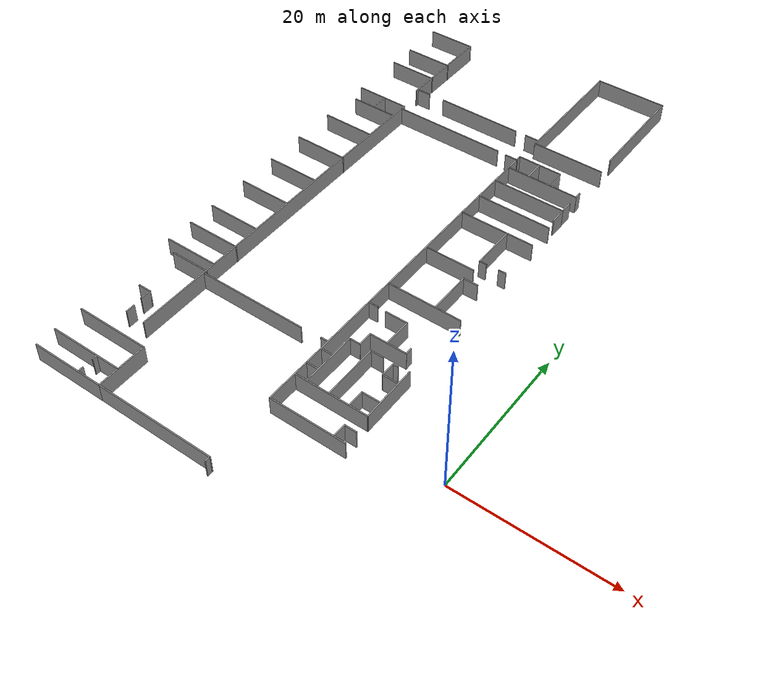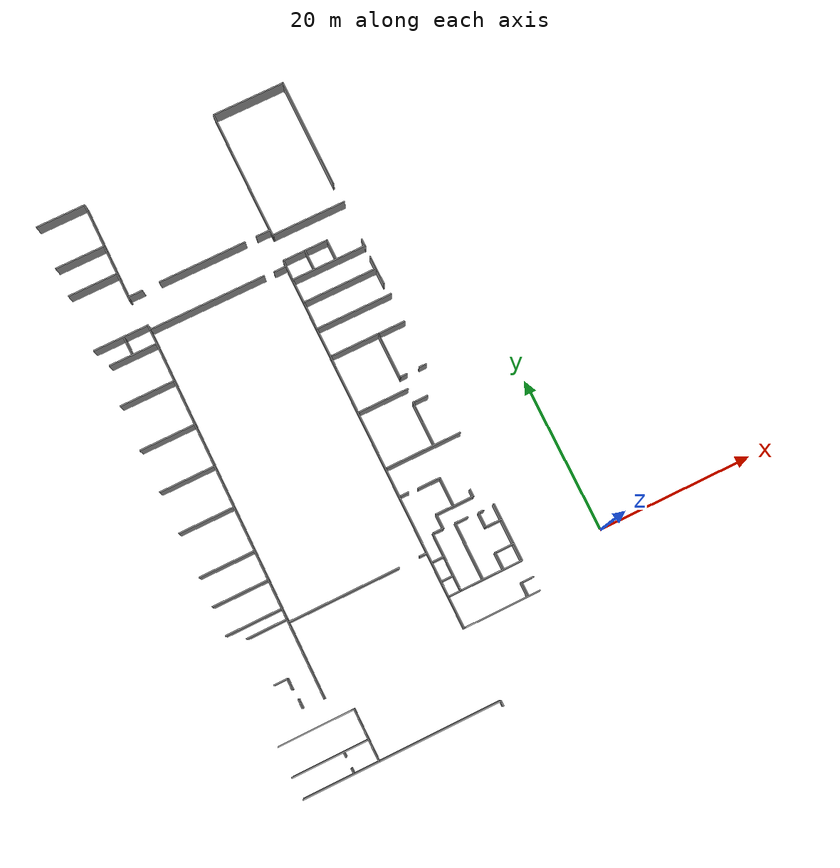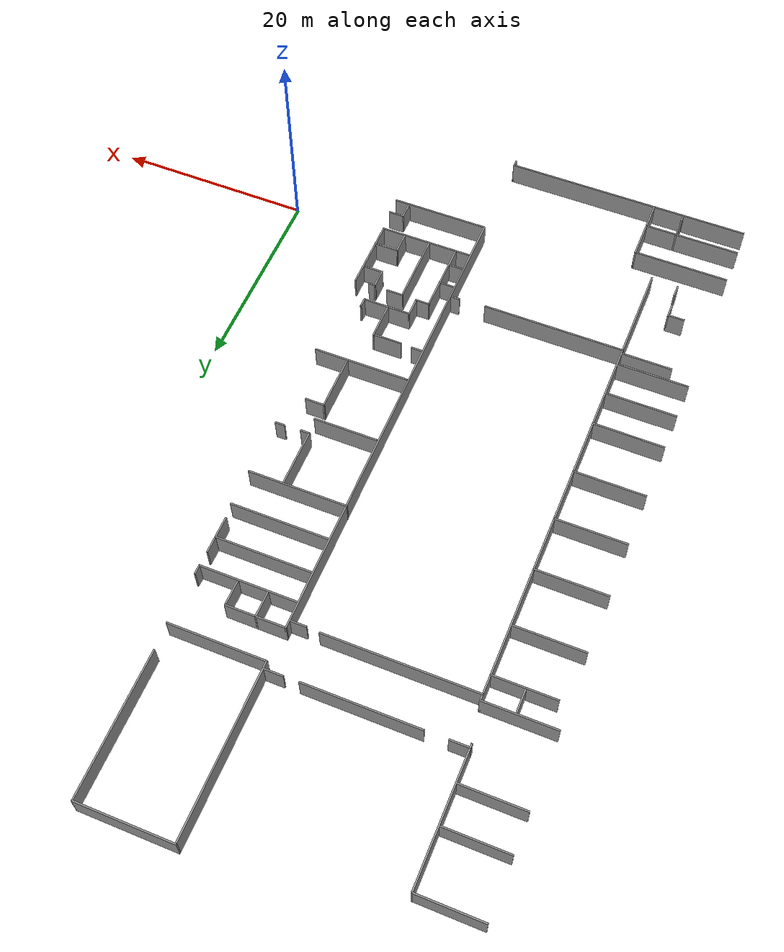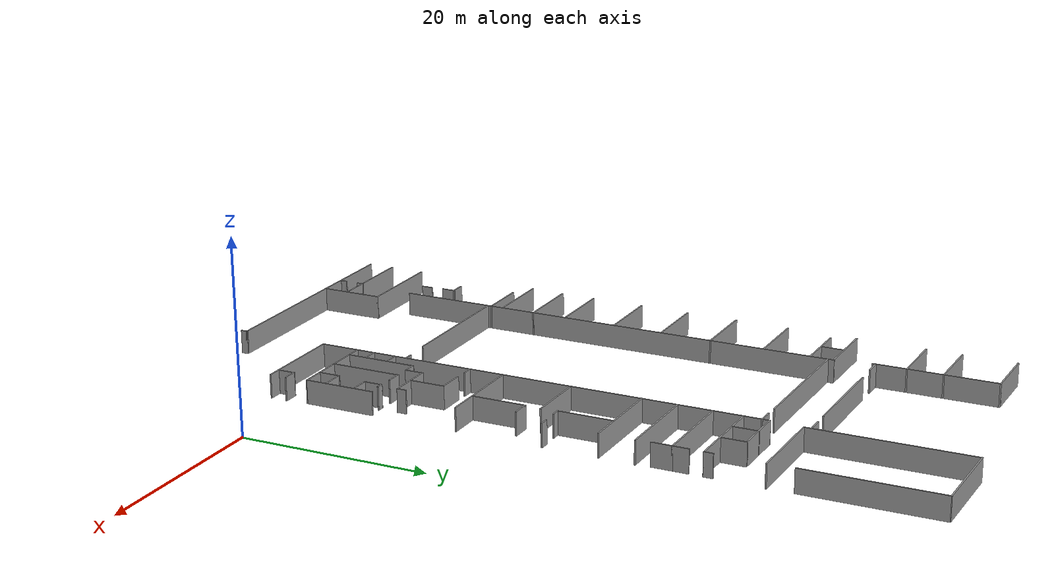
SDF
<sdf version="1.6">
 <model name="ensta_portes">
  <pose>1.28297 8.11006 0 0 -0 0</pose>
  <link name="Wall_340">
   <collision name="Wall_340_Collision">
    <geometry><box><size>9.59247 0.15 2.5</size></box></geometry>
    <pose>0 0 1.25 0 -0 0</pose>
   </collision>
   <visual name="Wall_340_Visual">
    <pose>0 0 1.25 0 -0 0</pose>
    <geometry><box><size>9.59247 0.15 2.5</size></box></geometry>
    <material>
     <script><uri>file://media/materials/scripts/gazebo.material</uri><name>Gazebo/Grey</name></script>
     <ambient>1 1 1 1</ambient>
    </material>
    <meta><layer>0</layer></meta>
   </visual>
   <pose>-16.2627 58.2864 0 0 -0 -0.000691</pose>
  </link>
  <link name="Wall_343">
   <collision name="Wall_343_Collision">
    <geometry><box><size>14.5 0.15 2.5</size></box></geometry>
    <pose>0 0 1.25 0 -0 0</pose>
   </collision>
   <visual name="Wall_343_Visual">
    <pose>0 0 1.25 0 -0 0</pose>
    <geometry><box><size>14.5 0.15 2.5</size></box></geometry>
    <material>
     <script><uri>file://media/materials/scripts/gazebo.material</uri><name>Gazebo/Grey</name></script>
     <ambient>1 1 1 1</ambient>
    </material>
    <meta><layer>0</layer></meta>
   </visual>
   <pose>-11.5415 51.1081 0 0 -0 -1.5708</pose>
  </link>
  <link name="Wall_345">
   <collision name="Wall_345_Collision">
    <geometry><box><size>17.25 0.15 2.5</size></box></geometry>
    <pose>0 0 1.25 0 -0 0</pose>
   </collision>
   <visual name="Wall_345_Visual">
    <pose>0 0 1.25 0 -0 0</pose>
    <geometry><box><size>17.25 0.15 2.5</size></box></geometry>
    <material>
     <script><uri>file://media/materials/scripts/gazebo.material</uri><name>Gazebo/Grey</name></script>
     <ambient>1 1 1 1</ambient>
    </material>
    <meta><layer>0</layer></meta>
   </visual>
   <pose>-20.9839 49.7396 0 0 -0 -1.5708</pose>
  </link>
  <link name="Wall_347">
   <collision name="Wall_347_Collision">
    <geometry><box><size>9.75 0.15 2.5</size></box></geometry>
    <pose>0 0 1.25 0 -0 0</pose>
   </collision>
   <visual name="Wall_347_Visual">
    <pose>0 0 1.25 0 -0 0</pose>
    <geometry><box><size>9.75 0.15 2.5</size></box></geometry>
    <material>
     <script><uri>file://media/materials/scripts/gazebo.material</uri><name>Gazebo/Grey</name></script>
     <ambient>1 1 1 1</ambient>
    </material>
    <meta><layer>0</layer></meta>
   </visual>
   <pose>-16.1839 41.1896 0 0 -0 0</pose>
  </link>
  <link name="Wall_380">
   <collision name="Wall_380_Collision">
    <geometry><box><size>49.25 0.15 2.5</size></box></geometry>
    <pose>0 0 1.25 0 -0 0</pose>
   </collision>
   <visual name="Wall_380_Visual">
    <pose>0 0 1.25 0 -0 0</pose>
    <geometry><box><size>49.25 0.15 2.5</size></box></geometry>
    <material>
     <script><uri>file://media/materials/scripts/gazebo.material</uri><name>Gazebo/Grey</name></script>
     <ambient>1 1 1 1</ambient>
    </material>
    <meta><layer>0</layer></meta>
   </visual>
   <pose>-21.1812 13.1709 0 0 -0 -1.5708</pose>
  </link>
  <link name="Wall_382">
   <collision name="Wall_382_Collision">
    <geometry><box><size>10 0.15 2.5</size></box></geometry>
    <pose>0 0 1.25 0 -0 0</pose>
   </collision>
   <visual name="Wall_382_Visual">
    <pose>0 0 1.25 0 -0 0</pose>
    <geometry><box><size>10 0.15 2.5</size></box></geometry>
    <material>
     <script><uri>file://media/materials/scripts/gazebo.material</uri><name>Gazebo/Grey</name></script>
     <ambient>1 1 1 1</ambient>
    </material>
    <meta><layer>0</layer></meta>
   </visual>
   <pose>-16.2562 -11.3791 0 0 -0 0</pose>
  </link>
  <link name="Wall_385">
   <collision name="Wall_385_Collision">
    <geometry><box><size>1.776 0.15 2.5</size></box></geometry>
    <pose>0 0 1.25 0 -0 0</pose>
   </collision>
   <visual name="Wall_385_Visual">
    <pose>0 0 1.25 0 -0 0</pose>
    <geometry><box><size>1.776 0.15 2.5</size></box></geometry>
    <material>
     <script><uri>file://media/materials/scripts/gazebo.material</uri><name>Gazebo/Grey</name></script>
     <ambient>1 1 1 1</ambient>
    </material>
    <meta><layer>0</layer></meta>
   </visual>
   <pose>-12.7716 -10.4273 0 0 -0 1.56551</pose>
  </link>
  <link name="Wall_386">
   <collision name="Wall_386_Collision">
    <geometry><box><size>1.60854 0.15 2.5</size></box></geometry>
    <pose>0 0 1.25 0 -0 0</pose>
   </collision>
   <visual name="Wall_386_Visual">
    <pose>0 0 1.25 0 -0 0</pose>
    <geometry><box><size>1.60854 0.15 2.5</size></box></geometry>
    <material>
     <script><uri>file://media/materials/scripts/gazebo.material</uri><name>Gazebo/Grey</name></script>
     <ambient>1 1 1 1</ambient>
    </material>
    <meta><layer>0</layer></meta>
   </visual>
   <pose>-12.0294 -9.61226 0 0 -0 0.002908</pose>
  </link>
  <link name="Wall_392">
   <collision name="Wall_392_Collision">
    <geometry><box><size>9.76266 0.15 2.5</size></box></geometry>
    <pose>0 0 1.25 0 -0 0</pose>
   </collision>
   <visual name="Wall_392_Visual">
    <pose>0 0 1.25 0 -0 0</pose>
    <geometry><box><size>9.76266 0.15 2.5</size></box></geometry>
    <material>
     <script><uri>file://media/materials/scripts/gazebo.material</uri><name>Gazebo/Grey</name></script>
     <ambient>1 1 1 1</ambient>
    </material>
    <meta><layer>0</layer></meta>
   </visual>
   <pose>-16.3654 -7.30687 0 0 -0 0.000567</pose>
  </link>
  <link name="Wall_393">
   <collision name="Wall_393_Collision">
    <geometry><box><size>7.5 0.15 2.5</size></box></geometry>
    <pose>0 0 1.25 0 -0 0</pose>
   </collision>
   <visual name="Wall_393_Visual">
    <pose>0 0 1.25 0 -0 0</pose>
    <geometry><box><size>7.5 0.15 2.5</size></box></geometry>
    <material>
     <script><uri>file://media/materials/scripts/gazebo.material</uri><name>Gazebo/Grey</name></script>
     <ambient>1 1 1 1</ambient>
    </material>
    <meta><layer>0</layer></meta>
   </visual>
   <pose>-11.5591 -3.62915 0 0 -0 1.5708</pose>
  </link>
  <link name="Wall_395">
   <collision name="Wall_395_Collision">
    <geometry><box><size>0.75 0.15 2.5</size></box></geometry>
    <pose>0 0 1.25 0 -0 0</pose>
   </collision>
   <visual name="Wall_395_Visual">
    <pose>0 0 1.25 0 -0 0</pose>
    <geometry><box><size>0.75 0.15 2.5</size></box></geometry>
    <material>
     <script><uri>file://media/materials/scripts/gazebo.material</uri><name>Gazebo/Grey</name></script>
     <ambient>1 1 1 1</ambient>
    </material>
    <meta><layer>0</layer></meta>
   </visual>
   <pose>-13.3149 -0.075414 0 0 -0 3.14159</pose>
  </link>
  <link name="Wall_396">
   <collision name="Wall_396_Collision">
    <geometry><box><size>2 0.15 2.5</size></box></geometry>
    <pose>0 0 1.25 0 -0 0</pose>
   </collision>
   <visual name="Wall_396_Visual">
    <pose>0 0 1.25 0 -0 0</pose>
    <geometry><box><size>2 0.15 2.5</size></box></geometry>
    <material>
     <script><uri>file://media/materials/scripts/gazebo.material</uri><name>Gazebo/Grey</name></script>
     <ambient>1 1 1 1</ambient>
    </material>
    <meta><layer>0</layer></meta>
   </visual>
   <pose>-13.6149 -1.00041 0 0 -0 -1.5708</pose>
  </link>
  <link name="Wall_397">
   <collision name="Wall_397_Collision">
    <geometry><box><size>2.165 0.15 2.5</size></box></geometry>
    <pose>0 0 1.25 0 -0 0</pose>
   </collision>
   <visual name="Wall_397_Visual">
    <pose>0 0 1.25 0 -0 0</pose>
    <geometry><box><size>2.165 0.15 2.5</size></box></geometry>
    <material>
     <script><uri>file://media/materials/scripts/gazebo.material</uri><name>Gazebo/Grey</name></script>
     <ambient>1 1 1 1</ambient>
    </material>
    <meta><layer>0</layer></meta>
   </visual>
   <pose>-12.6076 -1.93786 0 0 -0 -0.012354</pose>
  </link>
  <link name="Wall_399">
   <collision name="Wall_399_Collision">
    <geometry><box><size>2.25 0.15 2.5</size></box></geometry>
    <pose>0 0 1.25 0 -0 0</pose>
   </collision>
   <visual name="Wall_399_Visual">
    <pose>0 0 1.25 0 -0 0</pose>
    <geometry><box><size>2.25 0.15 2.5</size></box></geometry>
    <material>
     <script><uri>file://media/materials/scripts/gazebo.material</uri><name>Gazebo/Grey</name></script>
     <ambient>1 1 1 1</ambient>
    </material>
    <meta><layer>0</layer></meta>
   </visual>
   <pose>-13.9518 -6.1706 0 0 -0 -1.5708</pose>
  </link>
  <link name="Wall_401">
   <collision name="Wall_401_Collision">
    <geometry><box><size>2.5 0.15 2.5</size></box></geometry>
    <pose>0 0 1.25 0 -0 0</pose>
   </collision>
   <visual name="Wall_401_Visual">
    <pose>0 0 1.25 0 -0 0</pose>
    <geometry><box><size>2.5 0.15 2.5</size></box></geometry>
    <material>
     <script><uri>file://media/materials/scripts/gazebo.material</uri><name>Gazebo/Grey</name></script>
     <ambient>1 1 1 1</ambient>
    </material>
    <meta><layer>0</layer></meta>
   </visual>
   <pose>-12.7768 -5.1206 0 0 -0 0</pose>
  </link>
  <link name="Wall_403">
   <collision name="Wall_403_Collision">
    <geometry><box><size>1.75 0.15 2.5</size></box></geometry>
    <pose>0 0 1.25 0 -0 0</pose>
   </collision>
   <visual name="Wall_403_Visual">
    <pose>0 0 1.25 0 -0 0</pose>
    <geometry><box><size>1.75 0.15 2.5</size></box></geometry>
    <material>
     <script><uri>file://media/materials/scripts/gazebo.material</uri><name>Gazebo/Grey</name></script>
     <ambient>1 1 1 1</ambient>
    </material>
    <meta><layer>0</layer></meta>
   </visual>
   <pose>-15.8477 0.046295 0 0 -0 3.14159</pose>
  </link>
  <link name="Wall_404">
   <collision name="Wall_404_Collision">
    <geometry><box><size>7.5 0.15 2.5</size></box></geometry>
    <pose>0 0 1.25 0 -0 0</pose>
   </collision>
   <visual name="Wall_404_Visual">
    <pose>0 0 1.25 0 -0 0</pose>
    <geometry><box><size>7.5 0.15 2.5</size></box></geometry>
    <material>
     <script><uri>file://media/materials/scripts/gazebo.material</uri><name>Gazebo/Grey</name></script>
     <ambient>1 1 1 1</ambient>
    </material>
    <meta><layer>0</layer></meta>
   </visual>
   <pose>-16.6477 -3.62871 0 0 -0 -1.5708</pose>
  </link>
  <link name="Wall_407">
   <collision name="Wall_407_Collision">
    <geometry><box><size>7.54492 0.15 2.5</size></box></geometry>
    <pose>0 0 1.25 0 -0 0</pose>
   </collision>
   <visual name="Wall_407_Visual">
    <pose>0 0 1.25 0 -0 0</pose>
    <geometry><box><size>7.54492 0.15 2.5</size></box></geometry>
    <material>
     <script><uri>file://media/materials/scripts/gazebo.material</uri><name>Gazebo/Grey</name></script>
     <ambient>1 1 1 1</ambient>
    </material>
    <meta><layer>0</layer></meta>
   </visual>
   <pose>-19.5591 -3.5938 0 0 -0 1.56528</pose>
  </link>
  <link name="Wall_409">
   <collision name="Wall_409_Collision">
    <geometry><box><size>1.58962 0.15 2.5</size></box></geometry>
    <pose>0 0 1.25 0 -0 0</pose>
   </collision>
   <visual name="Wall_409_Visual">
    <pose>0 0 1.25 0 -0 0</pose>
    <geometry><box><size>1.58962 0.15 2.5</size></box></geometry>
    <material>
     <script><uri>file://media/materials/scripts/gazebo.material</uri><name>Gazebo/Grey</name></script>
     <ambient>1 1 1 1</ambient>
    </material>
    <meta><layer>0</layer></meta>
   </visual>
   <pose>-20.3611 -2.87734 0 0 -0 -0.014948</pose>
  </link>
  <link name="Wall_411">
   <collision name="Wall_411_Collision">
    <geometry><box><size>1.69141 0.15 2.5</size></box></geometry>
    <pose>0 0 1.25 0 -0 0</pose>
   </collision>
   <visual name="Wall_411_Visual">
    <pose>0 0 1.25 0 -0 0</pose>
    <geometry><box><size>1.69141 0.15 2.5</size></box></geometry>
    <material>
     <script><uri>file://media/materials/scripts/gazebo.material</uri><name>Gazebo/Grey</name></script>
     <ambient>1 1 1 1</ambient>
    </material>
    <meta><layer>0</layer></meta>
   </visual>
   <pose>-20.3691 -5.3591 0 0 -0 0.001535</pose>
  </link>
  <link name="Wall_413">
   <collision name="Wall_413_Collision">
    <geometry><box><size>1.5 0.15 2.5</size></box></geometry>
    <pose>0 0 1.25 0 -0 0</pose>
   </collision>
   <visual name="Wall_413_Visual">
    <pose>0 0 1.25 0 -0 0</pose>
    <geometry><box><size>1.5 0.15 2.5</size></box></geometry>
    <material>
     <script><uri>file://media/materials/scripts/gazebo.material</uri><name>Gazebo/Grey</name></script>
     <ambient>1 1 1 1</ambient>
    </material>
    <meta><layer>0</layer></meta>
   </visual>
   <pose>-18.8637 0.103603 0 0 -0 0</pose>
  </link>
  <link name="Wall_414">
   <collision name="Wall_414_Collision">
    <geometry><box><size>2 0.15 2.5</size></box></geometry>
    <pose>0 0 1.25 0 -0 0</pose>
   </collision>
   <visual name="Wall_414_Visual">
    <pose>0 0 1.25 0 -0 0</pose>
    <geometry><box><size>2 0.15 2.5</size></box></geometry>
    <material>
     <script><uri>file://media/materials/scripts/gazebo.material</uri><name>Gazebo/Grey</name></script>
     <ambient>1 1 1 1</ambient>
    </material>
    <meta><layer>0</layer></meta>
   </visual>
   <pose>-18.1887 1.0286 0 0 -0 1.5708</pose>
  </link>
  <link name="Wall_415">
   <collision name="Wall_415_Collision">
    <geometry><box><size>5 0.15 2.5</size></box></geometry>
    <pose>0 0 1.25 0 -0 0</pose>
   </collision>
   <visual name="Wall_415_Visual">
    <pose>0 0 1.25 0 -0 0</pose>
    <geometry><box><size>5 0.15 2.5</size></box></geometry>
    <material>
     <script><uri>file://media/materials/scripts/gazebo.material</uri><name>Gazebo/Grey</name></script>
     <ambient>1 1 1 1</ambient>
    </material>
    <meta><layer>0</layer></meta>
   </visual>
   <pose>-15.7637 1.9536 0 0 -0 0</pose>
  </link>
  <link name="Wall_416">
   <collision name="Wall_416_Collision">
    <geometry><box><size>1 0.15 2.5</size></box></geometry>
    <pose>0 0 1.25 0 -0 0</pose>
   </collision>
   <visual name="Wall_416_Visual">
    <pose>0 0 1.25 0 -0 0</pose>
    <geometry><box><size>1 0.15 2.5</size></box></geometry>
    <material>
     <script><uri>file://media/materials/scripts/gazebo.material</uri><name>Gazebo/Grey</name></script>
     <ambient>1 1 1 1</ambient>
    </material>
    <meta><layer>0</layer></meta>
   </visual>
   <pose>-13.3387 2.3786 0 0 -0 1.5708</pose>
  </link>
  <link name="Wall_418">
   <collision name="Wall_418_Collision">
    <geometry><box><size>1.25 0.15 2.5</size></box></geometry>
    <pose>0 0 1.25 0 -0 0</pose>
   </collision>
   <visual name="Wall_418_Visual">
    <pose>0 0 1.25 0 -0 0</pose>
    <geometry><box><size>1.25 0.15 2.5</size></box></geometry>
    <material>
     <script><uri>file://media/materials/scripts/gazebo.material</uri><name>Gazebo/Grey</name></script>
     <ambient>1 1 1 1</ambient>
    </material>
    <meta><layer>0</layer></meta>
   </visual>
   <pose>-20.5823 5.72557 0 0 -0 0</pose>
  </link>
  <link name="Wall_420">
   <collision name="Wall_420_Collision">
    <geometry><box><size>3 0.15 2.5</size></box></geometry>
    <pose>0 0 1.25 0 -0 0</pose>
   </collision>
   <visual name="Wall_420_Visual">
    <pose>0 0 1.25 0 -0 0</pose>
    <geometry><box><size>3 0.15 2.5</size></box></geometry>
    <material>
     <script><uri>file://media/materials/scripts/gazebo.material</uri><name>Gazebo/Grey</name></script>
     <ambient>1 1 1 1</ambient>
    </material>
    <meta><layer>0</layer></meta>
   </visual>
   <pose>-17.3209 5.64602 0 0 -0 0</pose>
  </link>
  <link name="Wall_421">
   <collision name="Wall_421_Collision">
    <geometry><box><size>3.75 0.15 2.5</size></box></geometry>
    <pose>0 0 1.25 0 -0 0</pose>
   </collision>
   <visual name="Wall_421_Visual">
    <pose>0 0 1.25 0 -0 0</pose>
    <geometry><box><size>3.75 0.15 2.5</size></box></geometry>
    <material>
     <script><uri>file://media/materials/scripts/gazebo.material</uri><name>Gazebo/Grey</name></script>
     <ambient>1 1 1 1</ambient>
    </material>
    <meta><layer>0</layer></meta>
   </visual>
   <pose>-15.8959 3.84602 0 0 -0 -1.5708</pose>
  </link>
  <link name="Wall_423">
   <collision name="Wall_423_Collision">
    <geometry><box><size>9.75 0.15 2.5</size></box></geometry>
    <pose>0 0 1.25 0 -0 0</pose>
   </collision>
   <visual name="Wall_423_Visual">
    <pose>0 0 1.25 0 -0 0</pose>
    <geometry><box><size>9.75 0.15 2.5</size></box></geometry>
    <material>
     <script><uri>file://media/materials/scripts/gazebo.material</uri><name>Gazebo/Grey</name></script>
     <ambient>1 1 1 1</ambient>
    </material>
    <meta><layer>0</layer></meta>
   </visual>
   <pose>-16.1978 9.43974 0 0 -0 0</pose>
  </link>
  <link name="Wall_426">
   <collision name="Wall_426_Collision">
    <geometry><box><size>5.75 0.15 2.5</size></box></geometry>
    <pose>0 0 1.25 0 -0 0</pose>
   </collision>
   <visual name="Wall_426_Visual">
    <pose>0 0 1.25 0 -0 0</pose>
    <geometry><box><size>5.75 0.15 2.5</size></box></geometry>
    <material>
     <script><uri>file://media/materials/scripts/gazebo.material</uri><name>Gazebo/Grey</name></script>
     <ambient>1 1 1 1</ambient>
    </material>
    <meta><layer>0</layer></meta>
   </visual>
   <pose>-14.7542 12.3573 0 0 -0 -1.5708</pose>
  </link>
  <link name="Wall_428">
   <collision name="Wall_428_Collision">
    <geometry><box><size>2 0.15 2.5</size></box></geometry>
    <pose>0 0 1.25 0 -0 0</pose>
   </collision>
   <visual name="Wall_428_Visual">
    <pose>0 0 1.25 0 -0 0</pose>
    <geometry><box><size>2 0.15 2.5</size></box></geometry>
    <material>
     <script><uri>file://media/materials/scripts/gazebo.material</uri><name>Gazebo/Grey</name></script>
     <ambient>1 1 1 1</ambient>
    </material>
    <meta><layer>0</layer></meta>
   </visual>
   <pose>-13.8292 15.1573 0 0 -0 0</pose>
  </link>
  <link name="Wall_431">
   <collision name="Wall_431_Collision">
    <geometry><box><size>6.5 0.15 2.5</size></box></geometry>
    <pose>0 0 1.25 0 -0 0</pose>
   </collision>
   <visual name="Wall_431_Visual">
    <pose>0 0 1.25 0 -0 0</pose>
    <geometry><box><size>6.5 0.15 2.5</size></box></geometry>
    <material>
     <script><uri>file://media/materials/scripts/gazebo.material</uri><name>Gazebo/Grey</name></script>
     <ambient>1 1 1 1</ambient>
    </material>
    <meta><layer>0</layer></meta>
   </visual>
   <pose>-17.7999 16.9183 0 0 -0 0</pose>
  </link>
  <link name="Wall_433">
   <collision name="Wall_433_Collision">
    <geometry><box><size>10 0.15 2.5</size></box></geometry>
    <pose>0 0 1.25 0 -0 0</pose>
   </collision>
   <visual name="Wall_433_Visual">
    <pose>0 0 1.25 0 -0 0</pose>
    <geometry><box><size>10 0.15 2.5</size></box></geometry>
    <material>
     <script><uri>file://media/materials/scripts/gazebo.material</uri><name>Gazebo/Grey</name></script>
     <ambient>1 1 1 1</ambient>
    </material>
    <meta><layer>0</layer></meta>
   </visual>
   <pose>-16.2767 24.525 0 0 -0 0</pose>
  </link>
  <link name="Wall_435">
   <collision name="Wall_435_Collision">
    <geometry><box><size>1 0.15 2.5</size></box></geometry>
    <pose>0 0 1.25 0 -0 0</pose>
   </collision>
   <visual name="Wall_435_Visual">
    <pose>0 0 1.25 0 -0 0</pose>
    <geometry><box><size>1 0.15 2.5</size></box></geometry>
    <material>
     <script><uri>file://media/materials/scripts/gazebo.material</uri><name>Gazebo/Grey</name></script>
     <ambient>1 1 1 1</ambient>
    </material>
    <meta><layer>0</layer></meta>
   </visual>
   <pose>-11.7767 18.675 0 0 -0 3.14159</pose>
  </link>
  <link name="Wall_437">
   <collision name="Wall_437_Collision">
    <geometry><box><size>6 0.15 2.5</size></box></geometry>
    <pose>0 0 1.25 0 -0 0</pose>
   </collision>
   <visual name="Wall_437_Visual">
    <pose>0 0 1.25 0 -0 0</pose>
    <geometry><box><size>6 0.15 2.5</size></box></geometry>
    <material>
     <script><uri>file://media/materials/scripts/gazebo.material</uri><name>Gazebo/Grey</name></script>
     <ambient>1 1 1 1</ambient>
    </material>
    <meta><layer>0</layer></meta>
   </visual>
   <pose>-14.8017 21.5304 0 0 -0 -1.5708</pose>
  </link>
  <link name="Wall_438">
   <collision name="Wall_438_Collision">
    <geometry><box><size>1 0.15 2.5</size></box></geometry>
    <pose>0 0 1.25 0 -0 0</pose>
   </collision>
   <visual name="Wall_438_Visual">
    <pose>0 0 1.25 0 -0 0</pose>
    <geometry><box><size>1 0.15 2.5</size></box></geometry>
    <material>
     <script><uri>file://media/materials/scripts/gazebo.material</uri><name>Gazebo/Grey</name></script>
     <ambient>1 1 1 1</ambient>
    </material>
    <meta><layer>0</layer></meta>
   </visual>
   <pose>-14.3767 18.6054 0 0 -0 0</pose>
  </link>
  <link name="Wall_444">
   <collision name="Wall_444_Collision">
    <geometry><box><size>9.93968 0.15 2.5</size></box></geometry>
    <pose>0 0 1.25 0 -0 0</pose>
   </collision>
   <visual name="Wall_444_Visual">
    <pose>0 0 1.25 0 -0 0</pose>
    <geometry><box><size>9.93968 0.15 2.5</size></box></geometry>
    <material>
     <script><uri>file://media/materials/scripts/gazebo.material</uri><name>Gazebo/Grey</name></script>
     <ambient>1 1 1 1</ambient>
    </material>
    <meta><layer>0</layer></meta>
   </visual>
   <pose>-16.2205 28.2916 0 0 -0 -0.000647</pose>
  </link>
  <link name="Wall_447">
   <collision name="Wall_447_Collision">
    <geometry><box><size>9.75 0.15 2.5</size></box></geometry>
    <pose>0 0 1.25 0 -0 0</pose>
   </collision>
   <visual name="Wall_447_Visual">
    <pose>0 0 1.25 0 -0 0</pose>
    <geometry><box><size>9.75 0.15 2.5</size></box></geometry>
    <material>
     <script><uri>file://media/materials/scripts/gazebo.material</uri><name>Gazebo/Grey</name></script>
     <ambient>1 1 1 1</ambient>
    </material>
    <meta><layer>0</layer></meta>
   </visual>
   <pose>-16.3259 31.9367 0 0 -0 0</pose>
  </link>
  <link name="Wall_449">
   <collision name="Wall_449_Collision">
    <geometry><box><size>2.25 0.15 2.5</size></box></geometry>
    <pose>0 0 1.25 0 -0 0</pose>
   </collision>
   <visual name="Wall_449_Visual">
    <pose>0 0 1.25 0 -0 0</pose>
    <geometry><box><size>2.25 0.15 2.5</size></box></geometry>
    <material>
     <script><uri>file://media/materials/scripts/gazebo.material</uri><name>Gazebo/Grey</name></script>
     <ambient>1 1 1 1</ambient>
    </material>
    <meta><layer>0</layer></meta>
   </visual>
   <pose>-11.5259 30.8867 0 0 -0 -1.5708</pose>
  </link>
  <link name="Wall_451">
   <collision name="Wall_451_Collision">
    <geometry><box><size>1.75 0.15 2.5</size></box></geometry>
    <pose>0 0 1.25 0 -0 0</pose>
   </collision>
   <visual name="Wall_451_Visual">
    <pose>0 0 1.25 0 -0 0</pose>
    <geometry><box><size>1.75 0.15 2.5</size></box></geometry>
    <material>
     <script><uri>file://media/materials/scripts/gazebo.material</uri><name>Gazebo/Grey</name></script>
     <ambient>1 1 1 1</ambient>
    </material>
    <meta><layer>0</layer></meta>
   </visual>
   <pose>-11.5259 32.7367 0 0 -0 1.5708</pose>
  </link>
  <link name="Wall_453">
   <collision name="Wall_453_Collision">
    <geometry><box><size>9.75 0.15 2.5</size></box></geometry>
    <pose>0 0 1.25 0 -0 0</pose>
   </collision>
   <visual name="Wall_453_Visual">
    <pose>0 0 1.25 0 -0 0</pose>
    <geometry><box><size>9.75 0.15 2.5</size></box></geometry>
    <material>
     <script><uri>file://media/materials/scripts/gazebo.material</uri><name>Gazebo/Grey</name></script>
     <ambient>1 1 1 1</ambient>
    </material>
    <meta><layer>0</layer></meta>
   </visual>
   <pose>-16.2861 35.0789 0 0 -0 0</pose>
  </link>
  <link name="Wall_454">
   <collision name="Wall_454_Collision">
    <geometry><box><size>1 0.15 2.5</size></box></geometry>
    <pose>0 0 1.25 0 -0 0</pose>
   </collision>
   <visual name="Wall_454_Visual">
    <pose>0 0 1.25 0 -0 0</pose>
    <geometry><box><size>1 0.15 2.5</size></box></geometry>
    <material>
     <script><uri>file://media/materials/scripts/gazebo.material</uri><name>Gazebo/Grey</name></script>
     <ambient>1 1 1 1</ambient>
    </material>
    <meta><layer>0</layer></meta>
   </visual>
   <pose>-11.4861 35.5039 0 0 -0 1.5708</pose>
  </link>
  <link name="Wall_456">
   <collision name="Wall_456_Collision">
    <geometry><box><size>6 0.15 2.5</size></box></geometry>
    <pose>0 0 1.25 0 -0 0</pose>
   </collision>
   <visual name="Wall_456_Visual">
    <pose>0 0 1.25 0 -0 0</pose>
    <geometry><box><size>6 0.15 2.5</size></box></geometry>
    <material>
     <script><uri>file://media/materials/scripts/gazebo.material</uri><name>Gazebo/Grey</name></script>
     <ambient>1 1 1 1</ambient>
    </material>
    <meta><layer>0</layer></meta>
   </visual>
   <pose>-18.2562 37.7209 0 0 -0 0</pose>
  </link>
  <link name="Wall_457">
   <collision name="Wall_457_Collision">
    <geometry><box><size>2.75 0.15 2.5</size></box></geometry>
    <pose>0 0 1.25 0 -0 0</pose>
   </collision>
   <visual name="Wall_457_Visual">
    <pose>0 0 1.25 0 -0 0</pose>
    <geometry><box><size>2.75 0.15 2.5</size></box></geometry>
    <material>
     <script><uri>file://media/materials/scripts/gazebo.material</uri><name>Gazebo/Grey</name></script>
     <ambient>1 1 1 1</ambient>
    </material>
    <meta><layer>0</layer></meta>
   </visual>
   <pose>-15.3312 36.4209 0 0 -0 -1.5708</pose>
  </link>
  <link name="Wall_459">
   <collision name="Wall_459_Collision">
    <geometry><box><size>2.75 0.15 2.5</size></box></geometry>
    <pose>0 0 1.25 0 -0 0</pose>
   </collision>
   <visual name="Wall_459_Visual">
    <pose>0 0 1.25 0 -0 0</pose>
    <geometry><box><size>2.75 0.15 2.5</size></box></geometry>
    <material>
     <script><uri>file://media/materials/scripts/gazebo.material</uri><name>Gazebo/Grey</name></script>
     <ambient>1 1 1 1</ambient>
    </material>
    <meta><layer>0</layer></meta>
   </visual>
   <pose>-18.282 36.4238 0 0 -0 -1.5708</pose>
  </link>
  <link name="Wall_461">
   <collision name="Wall_461_Collision">
    <geometry><box><size>2 0.15 2.5</size></box></geometry>
    <pose>0 0 1.25 0 -0 0</pose>
   </collision>
   <visual name="Wall_461_Visual">
    <pose>0 0 1.25 0 -0 0</pose>
    <geometry><box><size>2 0.15 2.5</size></box></geometry>
    <material>
     <script><uri>file://media/materials/scripts/gazebo.material</uri><name>Gazebo/Grey</name></script>
     <ambient>1 1 1 1</ambient>
    </material>
    <meta><layer>0</layer></meta>
   </visual>
   <pose>-21.9181 41.9138 0 0 -0 3.14159</pose>
  </link>
  <link name="Wall_463">
   <collision name="Wall_463_Collision">
    <geometry><box><size>11.5 0.15 2.5</size></box></geometry>
    <pose>0 0 1.25 0 -0 0</pose>
   </collision>
   <visual name="Wall_463_Visual">
    <pose>0 0 1.25 0 -0 0</pose>
    <geometry><box><size>11.5 0.15 2.5</size></box></geometry>
    <material>
     <script><uri>file://media/materials/scripts/gazebo.material</uri><name>Gazebo/Grey</name></script>
     <ambient>1 1 1 1</ambient>
    </material>
    <meta><layer>0</layer></meta>
   </visual>
   <pose>-30.0939 41.8835 0 0 -0 3.14159</pose>
  </link>
  <link name="Wall_465">
   <collision name="Wall_465_Collision">
    <geometry><box><size>2 0.15 2.5</size></box></geometry>
    <pose>0 0 1.25 0 -0 0</pose>
   </collision>
   <visual name="Wall_465_Visual">
    <pose>0 0 1.25 0 -0 0</pose>
    <geometry><box><size>2 0.15 2.5</size></box></geometry>
    <material>
     <script><uri>file://media/materials/scripts/gazebo.material</uri><name>Gazebo/Grey</name></script>
     <ambient>1 1 1 1</ambient>
    </material>
    <meta><layer>0</layer></meta>
   </visual>
   <pose>-39.0372 41.8533 0 0 -0 3.14159</pose>
  </link>
  <link name="Wall_467">
   <collision name="Wall_467_Collision">
    <geometry><box><size>13 0.15 2.5</size></box></geometry>
    <pose>0 0 1.25 0 -0 0</pose>
   </collision>
   <visual name="Wall_467_Visual">
    <pose>0 0 1.25 0 -0 0</pose>
    <geometry><box><size>13 0.15 2.5</size></box></geometry>
    <material>
     <script><uri>file://media/materials/scripts/gazebo.material</uri><name>Gazebo/Grey</name></script>
     <ambient>1 1 1 1</ambient>
    </material>
    <meta><layer>0</layer></meta>
   </visual>
   <pose>-39.9622 48.2783 0 0 -0 1.5708</pose>
  </link>
  <link name="Wall_468">
   <collision name="Wall_468_Collision">
    <geometry><box><size>6.5 0.15 2.5</size></box></geometry>
    <pose>0 0 1.25 0 -0 0</pose>
   </collision>
   <visual name="Wall_468_Visual">
    <pose>0 0 1.25 0 -0 0</pose>
    <geometry><box><size>6.5 0.15 2.5</size></box></geometry>
    <material>
     <script><uri>file://media/materials/scripts/gazebo.material</uri><name>Gazebo/Grey</name></script>
     <ambient>1 1 1 1</ambient>
    </material>
    <meta><layer>0</layer></meta>
   </visual>
   <pose>-43.1372 54.7033 0 0 -0 3.14159</pose>
  </link>
  <link name="Wall_471">
   <collision name="Wall_471_Collision">
    <geometry><box><size>6.5 0.15 2.5</size></box></geometry>
    <pose>0 0 1.25 0 -0 0</pose>
   </collision>
   <visual name="Wall_471_Visual">
    <pose>0 0 1.25 0 -0 0</pose>
    <geometry><box><size>6.5 0.15 2.5</size></box></geometry>
    <material>
     <script><uri>file://media/materials/scripts/gazebo.material</uri><name>Gazebo/Grey</name></script>
     <ambient>1 1 1 1</ambient>
    </material>
    <meta><layer>0</layer></meta>
   </visual>
   <pose>-43.1368 48.9237 0 0 -0 0</pose>
  </link>
  <link name="Wall_475">
   <collision name="Wall_475_Collision">
    <geometry><box><size>6.5 0.15 2.5</size></box></geometry>
    <pose>0 0 1.25 0 -0 0</pose>
   </collision>
   <visual name="Wall_475_Visual">
    <pose>0 0 1.25 0 -0 0</pose>
    <geometry><box><size>6.5 0.15 2.5</size></box></geometry>
    <material>
     <script><uri>file://media/materials/scripts/gazebo.material</uri><name>Gazebo/Grey</name></script>
     <ambient>1 1 1 1</ambient>
    </material>
    <meta><layer>0</layer></meta>
   </visual>
   <pose>-43.1362 45.1021 0 0 -0 0</pose>
  </link>
  <link name="Wall_480">
   <collision name="Wall_480_Collision">
    <geometry><box><size>0.489086 0.15 2.5</size></box></geometry>
    <pose>0 0 1.25 0 -0 0</pose>
   </collision>
   <visual name="Wall_480_Visual">
    <pose>0 0 1.25 0 -0 0</pose>
    <geometry><box><size>0.489086 0.15 2.5</size></box></geometry>
    <material>
     <script><uri>file://media/materials/scripts/gazebo.material</uri><name>Gazebo/Grey</name></script>
     <ambient>1 1 1 1</ambient>
    </material>
    <meta><layer>0</layer></meta>
   </visual>
   <pose>-39.9618 41.6839 0 0 -0 1.57313</pose>
  </link>
  <link name="Wall_539">
   <collision name="Wall_539_Collision">
    <geometry><box><size>15.25 0.15 2.5</size></box></geometry>
    <pose>0 0 1.25 0 -0 0</pose>
   </collision>
   <visual name="Wall_539_Visual">
    <pose>0 0 1.25 0 -0 0</pose>
    <geometry><box><size>15.25 0.15 2.5</size></box></geometry>
    <material>
     <script><uri>file://media/materials/scripts/gazebo.material</uri><name>Gazebo/Grey</name></script>
     <ambient>1 1 1 1</ambient>
    </material>
    <meta><layer>0</layer></meta>
   </visual>
   <pose>-31.6793 37.0305 0 0 -0 0</pose>
  </link>
  <link name="Wall_541">
   <collision name="Wall_541_Collision">
    <geometry><box><size>1.75 0.15 2.5</size></box></geometry>
    <pose>0 0 1.25 0 -0 0</pose>
   </collision>
   <visual name="Wall_541_Visual">
    <pose>0 0 1.25 0 -0 0</pose>
    <geometry><box><size>1.75 0.15 2.5</size></box></geometry>
    <material>
     <script><uri>file://media/materials/scripts/gazebo.material</uri><name>Gazebo/Grey</name></script>
     <ambient>1 1 1 1</ambient>
    </material>
    <meta><layer>0</layer></meta>
   </visual>
   <pose>-21.9764 36.9501 0 0 -0 0</pose>
  </link>
  <link name="Wall_543">
   <collision name="Wall_543_Collision">
    <geometry><box><size>7.25 0.15 2.5</size></box></geometry>
    <pose>0 0 1.25 0 -0 0</pose>
   </collision>
   <visual name="Wall_543_Visual">
    <pose>0 0 1.25 0 -0 0</pose>
    <geometry><box><size>7.25 0.15 2.5</size></box></geometry>
    <material>
     <script><uri>file://media/materials/scripts/gazebo.material</uri><name>Gazebo/Grey</name></script>
     <ambient>1 1 1 1</ambient>
    </material>
    <meta><layer>0</layer></meta>
   </visual>
   <pose>-42.804 37.619 0 0 -0 0</pose>
  </link>
  <link name="Wall_544">
   <collision name="Wall_544_Collision">
    <geometry><box><size>49.25 0.15 2.5</size></box></geometry>
    <pose>0 0 1.25 0 -0 0</pose>
   </collision>
   <visual name="Wall_544_Visual">
    <pose>0 0 1.25 0 -0 0</pose>
    <geometry><box><size>49.25 0.15 2.5</size></box></geometry>
    <material>
     <script><uri>file://media/materials/scripts/gazebo.material</uri><name>Gazebo/Grey</name></script>
     <ambient>1 1 1 1</ambient>
    </material>
    <meta><layer>0</layer></meta>
   </visual>
   <pose>-39.254 13.069 0 0 -0 -1.5708</pose>
  </link>
  <link name="Wall_546">
   <collision name="Wall_546_Collision">
    <geometry><box><size>14.5 0.15 2.5</size></box></geometry>
    <pose>0 0 1.25 0 -0 0</pose>
   </collision>
   <visual name="Wall_546_Visual">
    <pose>0 0 1.25 0 -0 0</pose>
    <geometry><box><size>14.5 0.15 2.5</size></box></geometry>
    <material>
     <script><uri>file://media/materials/scripts/gazebo.material</uri><name>Gazebo/Grey</name></script>
     <ambient>1 1 1 1</ambient>
    </material>
    <meta><layer>0</layer></meta>
   </visual>
   <pose>-32.0825 -1.77991 0 0 -0 0</pose>
  </link>
  <link name="Wall_548">
   <collision name="Wall_548_Collision">
    <geometry><box><size>1 0.15 2.5</size></box></geometry>
    <pose>0 0 1.25 0 -0 0</pose>
   </collision>
   <visual name="Wall_548_Visual">
    <pose>0 0 1.25 0 -0 0</pose>
    <geometry><box><size>1 0.15 2.5</size></box></geometry>
    <material>
     <script><uri>file://media/materials/scripts/gazebo.material</uri><name>Gazebo/Grey</name></script>
     <ambient>1 1 1 1</ambient>
    </material>
    <meta><layer>0</layer></meta>
   </visual>
   <pose>-21.6923 -1.63999 0 0 -0 0</pose>
  </link>
  <link name="Wall_554">
   <collision name="Wall_554_Collision">
    <geometry><box><size>7.25 0.15 2.5</size></box></geometry>
    <pose>0 0 1.25 0 -0 0</pose>
   </collision>
   <visual name="Wall_554_Visual">
    <pose>0 0 1.25 0 -0 0</pose>
    <geometry><box><size>7.25 0.15 2.5</size></box></geometry>
    <material>
     <script><uri>file://media/materials/scripts/gazebo.material</uri><name>Gazebo/Grey</name></script>
     <ambient>1 1 1 1</ambient>
    </material>
    <meta><layer>0</layer></meta>
   </visual>
   <pose>-42.8612 -0.01895 0 0 -0 0</pose>
  </link>
  <link name="Wall_556">
   <collision name="Wall_556_Collision">
    <geometry><box><size>5.25036 0.15 2.5</size></box></geometry>
    <pose>0 0 1.25 0 -0 0</pose>
   </collision>
   <visual name="Wall_556_Visual">
    <pose>0 0 1.25 0 -0 0</pose>
    <geometry><box><size>5.25036 0.15 2.5</size></box></geometry>
    <material>
     <script><uri>file://media/materials/scripts/gazebo.material</uri><name>Gazebo/Grey</name></script>
     <ambient>1 1 1 1</ambient>
    </material>
    <meta><layer>0</layer></meta>
   </visual>
   <pose>-41.7928 -1.38774 0 0 -0 0</pose>
  </link>
  <link name="Wall_561">
   <collision name="Wall_561_Collision">
    <geometry><box><size>1.75 0.15 2.5</size></box></geometry>
    <pose>0 0 1.25 0 -0 0</pose>
   </collision>
   <visual name="Wall_561_Visual">
    <pose>0 0 1.25 0 -0 0</pose>
    <geometry><box><size>1.75 0.15 2.5</size></box></geometry>
    <material>
     <script><uri>file://media/materials/scripts/gazebo.material</uri><name>Gazebo/Grey</name></script>
     <ambient>1 1 1 1</ambient>
    </material>
    <meta><layer>0</layer></meta>
   </visual>
   <pose>-42.9428 -7.58774 0 0 -0 0</pose>
  </link>
  <link name="Wall_562">
   <collision name="Wall_562_Collision">
    <geometry><box><size>1.5 0.15 2.5</size></box></geometry>
    <pose>0 0 1.25 0 -0 0</pose>
   </collision>
   <visual name="Wall_562_Visual">
    <pose>0 0 1.25 0 -0 0</pose>
    <geometry><box><size>1.5 0.15 2.5</size></box></geometry>
    <material>
     <script><uri>file://media/materials/scripts/gazebo.material</uri><name>Gazebo/Grey</name></script>
     <ambient>1 1 1 1</ambient>
    </material>
    <meta><layer>0</layer></meta>
   </visual>
   <pose>-42.1428 -8.26274 0 0 -0 -1.5708</pose>
  </link>
  <link name="Wall_568">
   <collision name="Wall_568_Collision">
    <geometry><box><size>1.25 0.15 2.5</size></box></geometry>
    <pose>0 0 1.25 0 -0 0</pose>
   </collision>
   <visual name="Wall_568_Visual">
    <pose>0 0 1.25 0 -0 0</pose>
    <geometry><box><size>1.25 0.15 2.5</size></box></geometry>
    <material>
     <script><uri>file://media/materials/scripts/gazebo.material</uri><name>Gazebo/Grey</name></script>
     <ambient>1 1 1 1</ambient>
    </material>
    <meta><layer>0</layer></meta>
   </visual>
   <pose>-41.9814 -10.8217 0 0 -0 -1.5708</pose>
  </link>
  <link name="Wall_573">
   <collision name="Wall_573_Collision">
    <geometry><box><size>7.25 0.15 2.5</size></box></geometry>
    <pose>0 0 1.25 0 -0 0</pose>
   </collision>
   <visual name="Wall_573_Visual">
    <pose>0 0 1.25 0 -0 0</pose>
    <geometry><box><size>7.25 0.15 2.5</size></box></geometry>
    <material>
     <script><uri>file://media/materials/scripts/gazebo.material</uri><name>Gazebo/Grey</name></script>
     <ambient>1 1 1 1</ambient>
    </material>
    <meta><layer>0</layer></meta>
   </visual>
   <pose>-42.7987 3.68609 0 0 -0 0</pose>
  </link>
  <link name="Wall_576">
   <collision name="Wall_576_Collision">
    <geometry><box><size>7.19871 0.15 2.5</size></box></geometry>
    <pose>0 0 1.25 0 -0 0</pose>
   </collision>
   <visual name="Wall_576_Visual">
    <pose>0 0 1.25 0 -0 0</pose>
    <geometry><box><size>7.19871 0.15 2.5</size></box></geometry>
    <material>
     <script><uri>file://media/materials/scripts/gazebo.material</uri><name>Gazebo/Grey</name></script>
     <ambient>1 1 1 1</ambient>
    </material>
    <meta><layer>0</layer></meta>
   </visual>
   <pose>-42.7844 7.45914 0 0 -0 -0.00325</pose>
  </link>
  <link name="Wall_579">
   <collision name="Wall_579_Collision">
    <geometry><box><size>7.15566 0.15 2.5</size></box></geometry>
    <pose>0 0 1.25 0 -0 0</pose>
   </collision>
   <visual name="Wall_579_Visual">
    <pose>0 0 1.25 0 -0 0</pose>
    <geometry><box><size>7.15566 0.15 2.5</size></box></geometry>
    <material>
     <script><uri>file://media/materials/scripts/gazebo.material</uri><name>Gazebo/Grey</name></script>
     <ambient>1 1 1 1</ambient>
    </material>
    <meta><layer>0</layer></meta>
   </visual>
   <pose>-42.7916 13.184 0 0 -0 -0.001818</pose>
  </link>
  <link name="Wall_583">
   <collision name="Wall_583_Collision">
    <geometry><box><size>7.16336 0.15 2.5</size></box></geometry>
    <pose>0 0 1.25 0 -0 0</pose>
   </collision>
   <visual name="Wall_583_Visual">
    <pose>0 0 1.25 0 -0 0</pose>
    <geometry><box><size>7.16336 0.15 2.5</size></box></geometry>
    <material>
     <script><uri>file://media/materials/scripts/gazebo.material</uri><name>Gazebo/Grey</name></script>
     <ambient>1 1 1 1</ambient>
    </material>
    <meta><layer>0</layer></meta>
   </visual>
   <pose>-42.7783 18.6061 0 0 -0 0.00043</pose>
  </link>
  <link name="Wall_586">
   <collision name="Wall_586_Collision">
    <geometry><box><size>7.25 0.15 2.5</size></box></geometry>
    <pose>0 0 1.25 0 -0 0</pose>
   </collision>
   <visual name="Wall_586_Visual">
    <pose>0 0 1.25 0 -0 0</pose>
    <geometry><box><size>7.25 0.15 2.5</size></box></geometry>
    <material>
     <script><uri>file://media/materials/scripts/gazebo.material</uri><name>Gazebo/Grey</name></script>
     <ambient>1 1 1 1</ambient>
    </material>
    <meta><layer>0</layer></meta>
   </visual>
   <pose>-42.8012 24.1731 0 0 -0 0</pose>
  </link>
  <link name="Wall_588">
   <collision name="Wall_588_Collision">
    <geometry><box><size>7 0.15 2.5</size></box></geometry>
    <pose>0 0 1.25 0 -0 0</pose>
   </collision>
   <visual name="Wall_588_Visual">
    <pose>0 0 1.25 0 -0 0</pose>
    <geometry><box><size>7 0.15 2.5</size></box></geometry>
    <material>
     <script><uri>file://media/materials/scripts/gazebo.material</uri><name>Gazebo/Grey</name></script>
     <ambient>1 1 1 1</ambient>
    </material>
    <meta><layer>0</layer></meta>
   </visual>
   <pose>-42.8224 30.0528 0 0 -0 0</pose>
  </link>
  <link name="Wall_593">
   <collision name="Wall_593_Collision">
    <geometry><box><size>6.25 0.15 2.5</size></box></geometry>
    <pose>0 0 1.25 0 -0 0</pose>
   </collision>
   <visual name="Wall_593_Visual">
    <pose>0 0 1.25 0 -0 0</pose>
    <geometry><box><size>6.25 0.15 2.5</size></box></geometry>
    <material>
     <script><uri>file://media/materials/scripts/gazebo.material</uri><name>Gazebo/Grey</name></script>
     <ambient>1 1 1 1</ambient>
    </material>
    <meta><layer>0</layer></meta>
   </visual>
   <pose>-42.3533 35.1174 0 0 -0 0</pose>
  </link>
  <link name="Wall_595">
   <collision name="Wall_595_Collision">
    <geometry><box><size>2.5 0.15 2.5</size></box></geometry>
    <pose>0 0 1.25 0 -0 0</pose>
   </collision>
   <visual name="Wall_595_Visual">
    <pose>0 0 1.25 0 -0 0</pose>
    <geometry><box><size>2.5 0.15 2.5</size></box></geometry>
    <material>
     <script><uri>file://media/materials/scripts/gazebo.material</uri><name>Gazebo/Grey</name></script>
     <ambient>1 1 1 1</ambient>
    </material>
    <meta><layer>0</layer></meta>
   </visual>
   <pose>-42.4733 36.333 0 0 -0 -1.5708</pose>
  </link>
  <link name="Wall_910">
   <collision name="Wall_910_Collision">
    <geometry><box><size>9.75 0.15 2.5</size></box></geometry>
    <pose>0 0 1.25 0 -0 0</pose>
   </collision>
   <visual name="Wall_910_Visual">
    <pose>0 0 1.25 0 -0 0</pose>
    <geometry><box><size>9.75 0.15 2.5</size></box></geometry>
    <material>
     <script><uri>file://media/materials/scripts/gazebo.material</uri><name>Gazebo/Grey</name></script>
     <ambient>1 1 1 1</ambient>
    </material>
    <meta><layer>0</layer></meta>
   </visual>
   <pose>-41.4815 -14.0942 0 0 -0 0</pose>
  </link>
  <link name="Wall_911">
   <collision name="Wall_911_Collision">
    <geometry><box><size>6.75 0.15 2.5</size></box></geometry>
    <pose>0 0 1.25 0 -0 0</pose>
   </collision>
   <visual name="Wall_911_Visual">
    <pose>0 0 1.25 0 -0 0</pose>
    <geometry><box><size>6.75 0.15 2.5</size></box></geometry>
    <material>
     <script><uri>file://media/materials/scripts/gazebo.material</uri><name>Gazebo/Grey</name></script>
     <ambient>1 1 1 1</ambient>
    </material>
    <meta><layer>0</layer></meta>
   </visual>
   <pose>-36.6815 -17.3942 0 0 -0 -1.5708</pose>
  </link>
  <link name="Wall_912">
   <collision name="Wall_912_Collision">
    <geometry><box><size>9.75 0.15 2.5</size></box></geometry>
    <pose>0 0 1.25 0 -0 0</pose>
   </collision>
   <visual name="Wall_912_Visual">
    <pose>0 0 1.25 0 -0 0</pose>
    <geometry><box><size>9.75 0.15 2.5</size></box></geometry>
    <material>
     <script><uri>file://media/materials/scripts/gazebo.material</uri><name>Gazebo/Grey</name></script>
     <ambient>1 1 1 1</ambient>
    </material>
    <meta><layer>0</layer></meta>
   </visual>
   <pose>-41.4815 -20.6942 0 0 -0 3.14159</pose>
  </link>
  <link name="Wall_914">
   <collision name="Wall_914_Collision">
    <geometry><box><size>15.75 0.15 2.5</size></box></geometry>
    <pose>0 0 1.25 0 -0 0</pose>
   </collision>
   <visual name="Wall_914_Visual">
    <pose>0 0 1.25 0 -0 0</pose>
    <geometry><box><size>15.75 0.15 2.5</size></box></geometry>
    <material>
     <script><uri>file://media/materials/scripts/gazebo.material</uri><name>Gazebo/Grey</name></script>
     <ambient>1 1 1 1</ambient>
    </material>
    <meta><layer>0</layer></meta>
   </visual>
   <pose>-28.8815 -20.6942 0 0 -0 0</pose>
  </link>
  <link name="Wall_922">
   <collision name="Wall_922_Collision">
    <geometry><box><size>9.75 0.15 2.5</size></box></geometry>
    <pose>0 0 1.25 0 -0 0</pose>
   </collision>
   <visual name="Wall_922_Visual">
    <pose>0 0 1.25 0 -0 0</pose>
    <geometry><box><size>9.75 0.15 2.5</size></box></geometry>
    <material>
     <script><uri>file://media/materials/scripts/gazebo.material</uri><name>Gazebo/Grey</name></script>
     <ambient>1 1 1 1</ambient>
    </material>
    <meta><layer>0</layer></meta>
   </visual>
   <pose>-41.5615 -17.9342 0 0 -0 0</pose>
  </link>
  <link name="Wall_928">
   <collision name="Wall_928_Collision">
    <geometry><box><size>0.75 0.15 2.5</size></box></geometry>
    <pose>0 0 1.25 0 -0 0</pose>
   </collision>
   <visual name="Wall_928_Visual">
    <pose>0 0 1.25 0 -0 0</pose>
    <geometry><box><size>0.75 0.15 2.5</size></box></geometry>
    <material>
     <script><uri>file://media/materials/scripts/gazebo.material</uri><name>Gazebo/Grey</name></script>
     <ambient>1 1 1 1</ambient>
    </material>
    <meta><layer>0</layer></meta>
   </visual>
   <pose>-39.8652 -18.2312 0 0 -0 -1.5708</pose>
  </link>
  <link name="Wall_931">
   <collision name="Wall_931_Collision">
    <geometry><box><size>0.75 0.15 2.5</size></box></geometry>
    <pose>0 0 1.25 0 -0 0</pose>
   </collision>
   <visual name="Wall_931_Visual">
    <pose>0 0 1.25 0 -0 0</pose>
    <geometry><box><size>0.75 0.15 2.5</size></box></geometry>
    <material>
     <script><uri>file://media/materials/scripts/gazebo.material</uri><name>Gazebo/Grey</name></script>
     <ambient>1 1 1 1</ambient>
    </material>
    <meta><layer>0</layer></meta>
   </visual>
   <pose>-39.8423 -20.3299 0 0 -0 1.5708</pose>
  </link>
  <link name="Wall_983">
   <collision name="Wall_983_Collision">
    <geometry><box><size>0.75 0.15 2.5</size></box></geometry>
    <pose>0 0 1.25 0 -0 0</pose>
   </collision>
   <visual name="Wall_983_Visual">
    <pose>0 0 1.25 0 -0 0</pose>
    <geometry><box><size>0.75 0.15 2.5</size></box></geometry>
    <material>
     <script><uri>file://media/materials/scripts/gazebo.material</uri><name>Gazebo/Grey</name></script>
     <ambient>1 1 1 1</ambient>
    </material>
    <meta><layer>0</layer></meta>
   </visual>
   <pose>-21.0815 -20.9942 0 0 -0 -1.5708</pose>
  </link>
  <static>1</static>
 </model>
</sdf>
